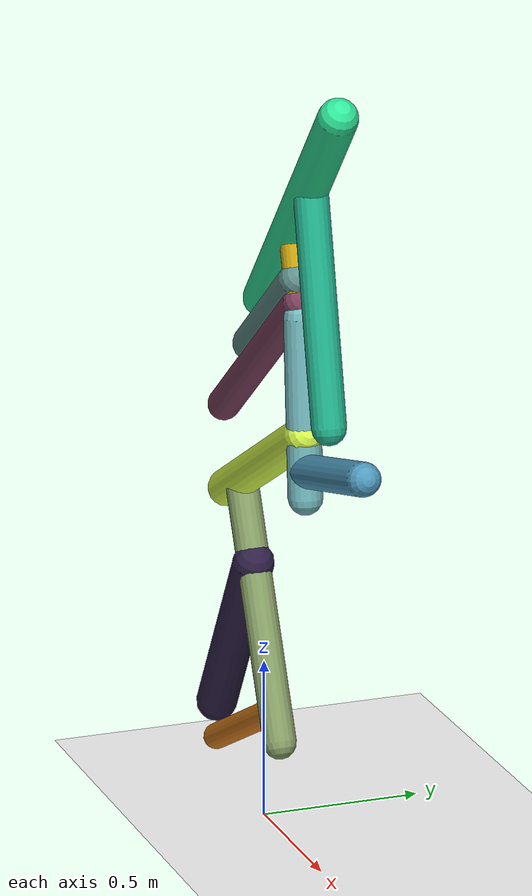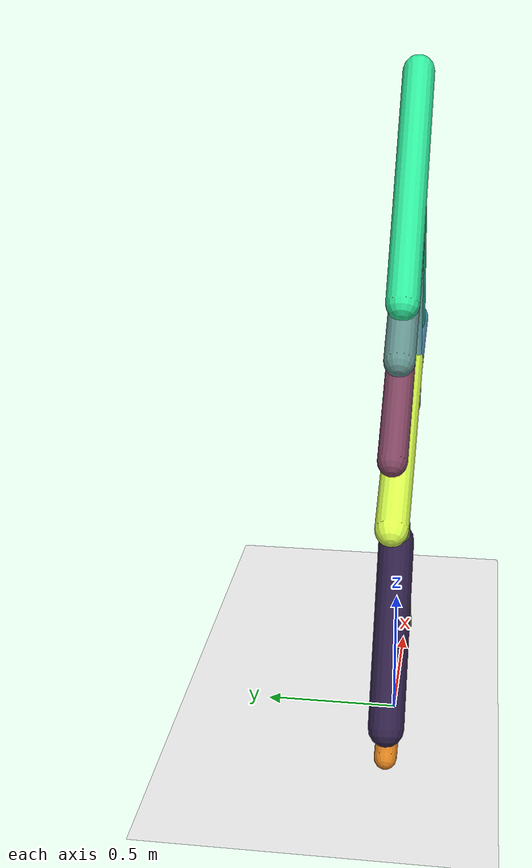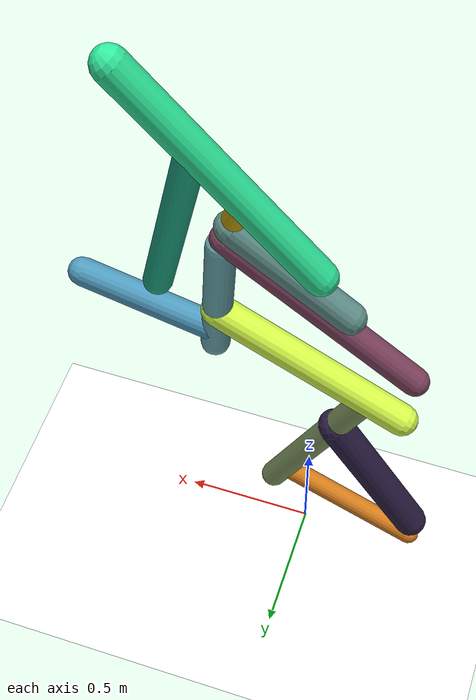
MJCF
<mujoco model="morphology">
  <option timestep="0.01"/>
  <default>
    <default class="/"/>
    <default class="0/"/>
    <default class="0/1/"/>
    <default class="0/2/"/>
    <default class="0/2/3/"/>
    <default class="0/2/4/"/>
    <default class="0/2/5/"/>
    <default class="0/2/5/6/"/>
    <default class="0/2/5/7/"/>
    <default class="0/2/5/7/8/"/>
    <default class="0/2/5/7/8/9/"/>
    <default class="0/2/5/7/8/10/"/>
  </default>
  <asset>
    <texture name="texplane" type="2d" builtin="checker" rgb1="0.10000000000000001 0.20000000000000001 0.29999999999999999" rgb2="0.20000000000000001 0.29999999999999999 0.40000000000000002" width="300" height="300"/>
    <material name="MatPlane" class="/" texture="texplane" texrepeat="20 20" specular="1" shininess="1" reflectance="0.5"/>
  </asset>
  <worldbody>
    <light name="//unnamed_light_0" class="/" directional="true" pos="0 0 1.5" dir="0 0 -1.3" cutoff="100" exponent="1" diffuse="1 1 1" specular="0.10000000000000001 0.10000000000000001 0.10000000000000001"/>
    <geom name="ground" class="/" type="plane" size="15 15 0.5" material="MatPlane" rgba="1 1 1 1"/>
    <site name="body" class="/" size="9.9999999999999995e-07 9.9999999999999995e-07 9.9999999999999995e-07" pos="0 0 1.6553197860717774"/>
    <body pos="0 0 1.6553197860717774" name="0/">
      <joint name="0/rootx/" class="/" type="slide" axis="1 0 0" limited="false" stiffness="0" armature="0" damping="0"/>
      <joint name="0/rootz/" class="/" type="slide" axis="0 0 1" limited="false" stiffness="0" armature="0" damping="0"/>
      <joint name="0/rooty/" class="/" type="hinge" axis="0 1 0" limited="false" stiffness="0" armature="0" damping="0"/>
      <geom name="0/geom" class="0/" type="capsule" contype="1" conaffinity="1" condim="3" size="0.060142818817028237" rgba="0.18084484037241921 0.89979512367439829 0.60139078147611269 1" friction="0.59999999999999998 0.10000000000000001 0.10000000000000001" fromto="0 0 0 0.64066234879671025 0 0.7081969713811429"/>
      <site name="0/end0" class="0/" size="0.0050000000000000001" pos="0.64066234879671025 0 0.7081969713811429"/>
      <site name="0/attach1" class="0/" size="9.9999999999999995e-07 9.9999999999999995e-07 9.9999999999999995e-07" pos="0.40957538405922317 0 0.45275026242419281"/>
      <body pos="0.40957538405922317 0 0.45275026242419281" name="0/1/">
        <geom name="0/1/geom" class="0/1/" type="capsule" contype="1" conaffinity="1" condim="3" size="0.052276667735980525" rgba="0.1267486560977894 0.69868510629776348 0.55313578930712648 1" friction="0.59999999999999998 0.10000000000000001 0.10000000000000001" fromto="0 0 0 0.15756271336658678 0 -0.69351530408103534"/>
        <site name="0/1/end1" class="0/1/" size="0.0050000000000000001" pos="0.15756271336658678 0 -0.69351530408103534"/>
      </body>
      <site name="0/attach2" class="0/" size="9.9999999999999995e-07 9.9999999999999995e-07 9.9999999999999995e-07" pos="0.25357500671030997 0 0.28030529983146818"/>
      <body pos="0.25357500671030997 0 0.28030529983146818" name="0/2/">
        <joint name="0/2/joint/" class="0/" type="hinge" axis="0 1 0" limited="true" range="-50.340318508528846 50.340318508528846"/>
        <geom name="0/2/geom" class="0/2/" type="capsule" contype="1" conaffinity="1" condim="3" size="0.040958255312140535" rgba="0.80134595635899442 0.6565922391776674 0.056352211181399103 1" friction="0.59999999999999998 0.10000000000000001 0.10000000000000001" fromto="0 0 0 0.082072391812591072 0 -0.2578934325780205"/>
        <site name="0/2/end2" class="0/2/" size="0.0050000000000000001" pos="0.082072391812591072 0 -0.2578934325780205"/>
        <site name="0/2/attach3" class="0/2/" size="9.9999999999999995e-07 9.9999999999999995e-07 9.9999999999999995e-07" pos="0.066053604457493476 0 -0.20755811316663064"/>
        <body pos="0.066053604457493476 0 -0.20755811316663064" name="0/2/3/">
          <joint name="0/2/3/joint/" class="0/2/" type="hinge" axis="0 1 0" limited="true" range="-33.202701906580828 33.202701906580828"/>
          <geom name="0/2/3/geom" class="0/2/3/" type="capsule" contype="1" conaffinity="1" condim="3" size="0.05098268412749947" rgba="0.48715820034640955 0.25627028092321202 0.36851538134370665 1" friction="0.59999999999999998 0.10000000000000001 0.10000000000000001" fromto="0 0 0 -0.67278220767229902 0 -0.5089714845532417"/>
          <site name="0/2/3/end3" class="0/2/3/" size="0.0050000000000000001" pos="-0.67278220767229902 0 -0.5089714845532417"/>
        </body>
        <site name="0/2/attach4" class="0/2/" size="9.9999999999999995e-07 9.9999999999999995e-07 9.9999999999999995e-07" pos="0.045402151593186876 0 -0.14266571818123"/>
        <body pos="0.045402151593186876 0 -0.14266571818123" name="0/2/4/">
          <joint name="0/2/4/joint/" class="0/2/" type="hinge" axis="0 1 0" limited="true" range="-49.682263358934932 49.682263358934932"/>
          <geom name="0/2/4/geom" class="0/2/4/" type="capsule" contype="1" conaffinity="1" condim="3" size="0.055206608880516095" rgba="0.37804545263808931 0.56352172469702133 0.54471685034128192 1" friction="0.59999999999999998 0.10000000000000001 0.10000000000000001" fromto="0 0 0 -0.40805685612273673 0 -0.30959745505308267"/>
          <site name="0/2/4/end4" class="0/2/4/" size="0.0050000000000000001" pos="-0.40805685612273673 0 -0.30959745505308267"/>
        </body>
        <site name="0/2/attach5" class="0/2/" size="9.9999999999999995e-07 9.9999999999999995e-07 9.9999999999999995e-07" pos="0.079492584664734578 0 -0.24978698769373781"/>
        <body pos="0.079492584664734578 0 -0.24978698769373781" name="0/2/5/">
          <joint name="0/2/5/joint/" class="0/2/" type="hinge" axis="0 1 0" limited="true" range="-62.963610162258838 62.963610162258838"/>
          <geom name="0/2/5/geom" class="0/2/5/" type="capsule" contype="1" conaffinity="1" condim="3" size="0.052876437543103914" rgba="0.44328161710623593 0.71453581702612834 0.73247818239773077 1" friction="0.59999999999999998 0.10000000000000001 0.10000000000000001" fromto="0 0 0 0.035746303519986755 0 -0.5457679319916986"/>
          <site name="0/2/5/end5" class="0/2/5/" size="0.0050000000000000001" pos="0.035746303519986755 0 -0.5457679319916986"/>
          <site name="0/2/5/attach6" class="0/2/5/" size="9.9999999999999995e-07 9.9999999999999995e-07 9.9999999999999995e-07" pos="0.030440969770678557 0 -0.46476708032974268"/>
          <body pos="0.030440969770678557 0 -0.46476708032974268" name="0/2/5/6/">
            <joint name="0/2/5/6/joint/" class="0/2/5/" type="hinge" axis="0 1 0" limited="true" range="-41.375091927642956 41.375091927642956"/>
            <geom name="0/2/5/6/geom" class="0/2/5/6/" type="capsule" contype="1" conaffinity="1" condim="3" size="0.051621424017047113" rgba="0.30330231168915667 0.59665040109711942 0.73311880252267092 1" friction="0.59999999999999998 0.10000000000000001 0.10000000000000001" fromto="0 0 0 0.48850863219487572 0 0.12378169809451411"/>
            <site name="0/2/5/6/end6" class="0/2/5/6/" size="0.0050000000000000001" pos="0.48850863219487572 0 0.12378169809451411"/>
          </body>
          <site name="0/2/5/attach7" class="0/2/5/" size="9.9999999999999995e-07 9.9999999999999995e-07 9.9999999999999995e-07" pos="0.023239863019413092 0 -0.35482191809801245"/>
          <body pos="0.023239863019413092 0 -0.35482191809801245" name="0/2/5/7/">
            <joint name="0/2/5/7/joint/" class="0/2/5/" type="hinge" axis="0 1 0" limited="true" range="-57.020327827888579 57.020327827888579"/>
            <geom name="0/2/5/7/geom" class="0/2/5/7/" type="capsule" contype="1" conaffinity="1" condim="3" size="0.058943915798099003" rgba="0.84661356677438171 0.9950374512742417 0.29564990138522262 1" friction="0.59999999999999998 0.10000000000000001 0.10000000000000001" fromto="0 0 0 -0.68847833818439386 0 -0.37458765230214386"/>
            <site name="0/2/5/7/end7" class="0/2/5/7/" size="0.0050000000000000001" pos="-0.68847833818439386 0 -0.37458765230214386"/>
            <site name="0/2/5/7/attach8" class="0/2/5/7/" size="9.9999999999999995e-07 9.9999999999999995e-07 9.9999999999999995e-07" pos="-0.55626243747253201 0 -0.3026515562801872"/>
            <body pos="-0.55626243747253201 0 -0.3026515562801872" name="0/2/5/7/8/">
              <joint name="0/2/5/7/8/joint/" class="0/2/5/7/" type="hinge" axis="0 1 0" limited="true" range="-37.607511464940259 37.607511464940259"/>
              <geom name="0/2/5/7/8/geom" class="0/2/5/7/8/" type="capsule" contype="1" conaffinity="1" condim="3" size="0.05104087623394625" rgba="0.51839043849116251 0.61044802194646341 0.39136753152435422 1" friction="0.59999999999999998 0.10000000000000001 0.10000000000000001" fromto="0 0 0 0.34162821134569565 0 -0.74341377594224745"/>
              <site name="0/2/5/7/8/end8" class="0/2/5/7/8/" size="0.0050000000000000001" pos="0.34162821134569565 0 -0.74341377594224745"/>
              <site name="0/2/5/7/8/attach9" class="0/2/5/7/8/" size="9.9999999999999995e-07 9.9999999999999995e-07 9.9999999999999995e-07" pos="0.10959722251262934 0 -0.23849343325586866"/>
              <body pos="0.10959722251262934 0 -0.23849343325586866" name="0/2/5/7/8/9/">
                <joint name="0/2/5/7/8/9/joint/" class="0/2/5/7/8/" type="hinge" axis="0 1 0" limited="true" range="-49.470105070882148 49.470105070882148"/>
                <geom name="0/2/5/7/8/9/geom" class="0/2/5/7/8/9/" type="capsule" contype="1" conaffinity="1" condim="3" size="0.064361549512820082" rgba="0.18180236010824613 0.12345102077505732 0.27585624751711113 1" friction="0.59999999999999998 0.10000000000000001 0.10000000000000001" fromto="0 0 0 -0.34696970708031272 0 -0.56831971634431022"/>
                <site name="0/2/5/7/8/9/end9" class="0/2/5/7/8/9/" size="0.0050000000000000001" pos="-0.34696970708031272 0 -0.56831971634431022"/>
              </body>
              <site name="0/2/5/7/8/attach10" class="0/2/5/7/8/" size="9.9999999999999995e-07 9.9999999999999995e-07 9.9999999999999995e-07" pos="0.29981284530850694 0 -0.65241977098093751"/>
              <body pos="0.29981284530850694 0 -0.65241977098093751" name="0/2/5/7/8/10/">
                <joint name="0/2/5/7/8/10/joint/" class="0/2/5/7/8/" type="hinge" axis="0 1 0" limited="true" range="-49.744867224678245 49.744867224678245"/>
                <geom name="0/2/5/7/8/10/geom" class="0/2/5/7/8/10/" type="capsule" contype="1" conaffinity="1" condim="3" size="0.040931223624434736" rgba="0.84059334251270135 0.490337741652345 0.10807270771155009 1" friction="0.59999999999999998 0.10000000000000001 0.10000000000000001" fromto="0 0 0 -0.54190474685535239 0 -0.27594481580384589"/>
                <site name="0/2/5/7/8/10/end10" class="0/2/5/7/8/10/" size="0.0050000000000000001" pos="-0.54190474685535239 0 -0.27594481580384589"/>
              </body>
            </body>
          </body>
        </body>
      </body>
      <camera name="0/side" class="0/" mode="trackcom" pos="0.40000000000000002 -4 0.20000000000000001" quat="0.70699999999999996 0.70699999999999996 0 0"/>
    </body>
  </worldbody>
  <actuator>
    <motor name="0/2/motor" class="0/2/" ctrllimited="true" ctrlrange="-1 1" gear="76" joint="0/2/joint/"/>
    <motor name="0/2/3/motor" class="0/2/3/" ctrllimited="true" ctrlrange="-1 1" gear="73" joint="0/2/3/joint/"/>
    <motor name="0/2/4/motor" class="0/2/4/" ctrllimited="true" ctrlrange="-1 1" gear="64" joint="0/2/4/joint/"/>
    <motor name="0/2/5/motor" class="0/2/5/" ctrllimited="true" ctrlrange="-1 1" gear="67" joint="0/2/5/joint/"/>
    <motor name="0/2/5/6/motor" class="0/2/5/6/" ctrllimited="true" ctrlrange="-1 1" gear="64" joint="0/2/5/6/joint/"/>
    <motor name="0/2/5/7/motor" class="0/2/5/7/" ctrllimited="true" ctrlrange="-1 1" gear="55" joint="0/2/5/7/joint/"/>
    <motor name="0/2/5/7/8/motor" class="0/2/5/7/8/" ctrllimited="true" ctrlrange="-1 1" gear="57" joint="0/2/5/7/8/joint/"/>
    <motor name="0/2/5/7/8/9/motor" class="0/2/5/7/8/9/" ctrllimited="true" ctrlrange="-1 1" gear="78" joint="0/2/5/7/8/9/joint/"/>
    <motor name="0/2/5/7/8/10/motor" class="0/2/5/7/8/10/" ctrllimited="true" ctrlrange="-1 1" gear="79" joint="0/2/5/7/8/10/joint/"/>
  </actuator>
  <sensor>
    <subtreelinvel name="velocity" body="0/"/>
  </sensor>
</mujoco>
